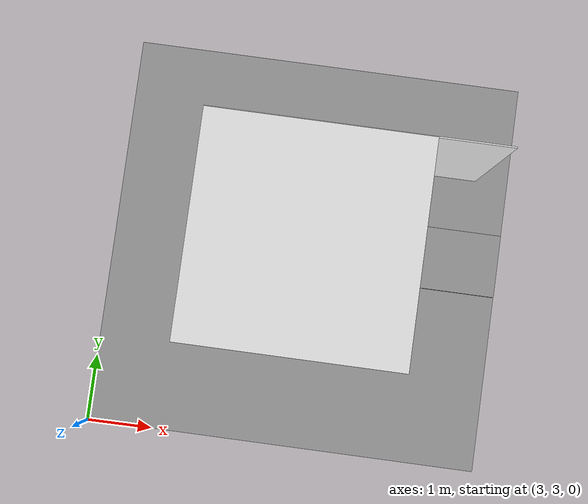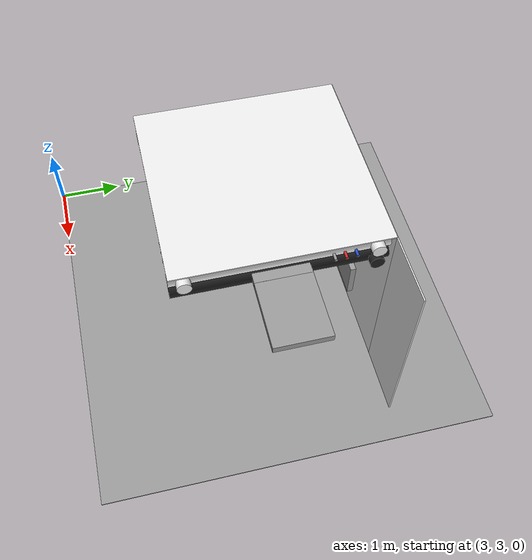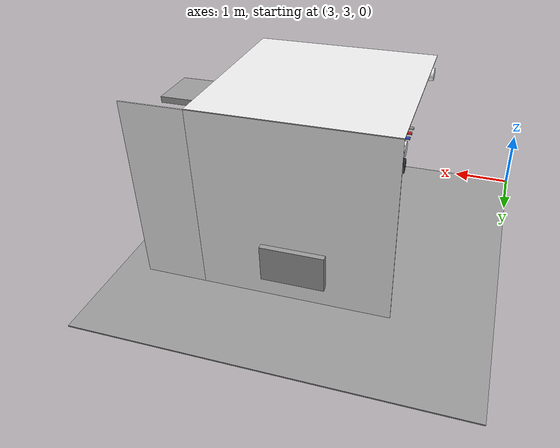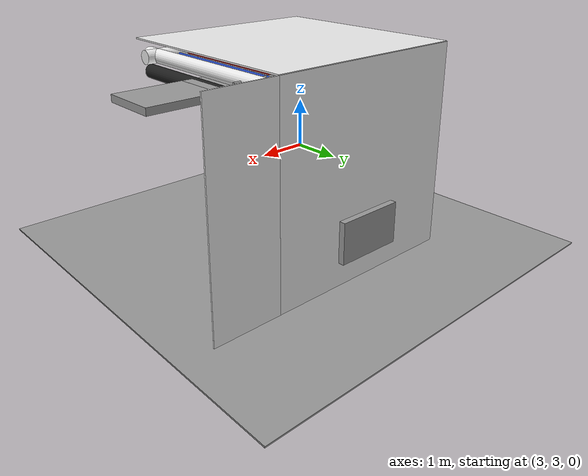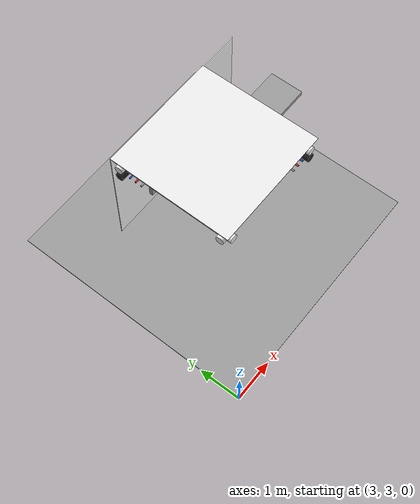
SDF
<sdf version="1.6">
 <world name="default">
  <model name="wall_front_2_2_0_2">
   <static>1</static>
   <pose>6.0 7.5 1.5 0.0 0.0 0.0</pose>
   <link name="link">
    <collision name="collision"><geometry><box><size>3.0 0.02 3.0</size></box></geometry></collision>
    <visual name="visual">
     <material>
      <script><name>Gazebo/White</name><uri>file://media/materials/scripts/gazebo.material</uri></script>
     </material>
     <geometry><box><size>3.0 0.02 3.0</size></box></geometry>
    </visual>
   </link>
  </model>
  <model name="wall_top_2_2_0_2">
   <static>1</static>
   <pose>6.0 6.0 3.0 1.57 0.0 0.0</pose>
   <link name="link">
    <collision name="collision"><geometry><box><size>3.0 0.02 3.0</size></box></geometry></collision>
    <visual name="visual">
     <material>
      <script><name>Gazebo/White</name><uri>file://media/materials/scripts/gazebo.material</uri></script>
     </material>
     <geometry><box><size>3.0 0.02 3.0</size></box></geometry>
    </visual>
   </link>
  </model>
  <model name="ceiling_1_2_2_1_2">
   <pose>7.0 6.0 2.55 0.0 0.0 1.57</pose>
   <link name="link_1">
    <visual name="visual">
     <geometry><box><size>0.8 1 0.1</size></box></geometry>
     <material>
      <script><uri>file://media/materials/scripts/gazebo.material</uri><name>Gazebo/Grey</name></script>
     </material>
    </visual>
    <collision name="collision"><geometry><box><size>0.8 1 0.1</size></box></geometry></collision>
   </link>
   <static>1</static>
  </model>
  <model name="white_pipe_left_2_2_0_2">
   <static>1</static>
   <pose>6.0 6.0 2.76 0.0 0.0 0.0</pose>
   <link name="link_0">
    <visual name="visual">
     <pose>-1.3 0 0 1.57 0 0</pose>
     <geometry><cylinder><radius>0.1</radius><length>3.0</length></cylinder></geometry>
     <material>
      <script><uri>file://media/materials/scripts/gazebo.material</uri><name>Gazebo/White</name></script>
     </material>
    </visual>
    <collision name="collision">
     <pose>-1.3 0 0 1.57 0 0</pose>
     <geometry><cylinder><radius>0.1</radius><length>3.0</length></cylinder></geometry>
    </collision>
   </link>
  </model>
  <model name="white_pipe_right_2_2_0_2">
   <static>1</static>
   <pose>6.0 6.0 2.76 0.0 0.0 0.0</pose>
   <link name="link_0">
    <visual name="visual">
     <pose>1.3 0 0 1.57 0 0</pose>
     <geometry><cylinder><radius>0.1</radius><length>3.0</length></cylinder></geometry>
     <material>
      <script><uri>file://media/materials/scripts/gazebo.material</uri><name>Gazebo/White</name></script>
     </material>
    </visual>
    <collision name="collision">
     <pose>1.3 0 0 1.57 0 0</pose>
     <geometry><cylinder><radius>0.1</radius><length>3.0</length></cylinder></geometry>
    </collision>
   </link>
  </model>
  <model name="black_pipe_right_2_2_0_2">
   <static>1</static>
   <pose>6.0 6.0 2.76 0.0 0.0 0.0</pose>
   <link name="link_0">
    <visual name="visual">
     <pose>1.3 0 -0.25 1.57 0 0</pose>
     <geometry><cylinder><radius>0.1</radius><length>3.0</length></cylinder></geometry>
     <material>
      <script><uri>file://media/materials/scripts/gazebo.material</uri><name>Gazebo/Black</name></script>
     </material>
    </visual>
    <collision name="collision">
     <pose>1.3 0 -0.25 1.57 0 0</pose>
     <geometry><cylinder><radius>0.1</radius><length>3.0</length></cylinder></geometry>
    </collision>
   </link>
  </model>
  <model name="grey_pipe_right_2_2_0_2">
   <static>1</static>
   <pose>6.0 6.0 2.76 0.0 0.0 0.0</pose>
   <link name="link_0">
    <visual name="visual">
     <pose>0.7 0 0 1.57 0 0</pose>
     <geometry><cylinder><radius>0.02</radius><length>3.0</length></cylinder></geometry>
     <material>
      <script><uri>file://media/materials/scripts/gazebo.material</uri><name>Gazebo/Grey</name></script>
     </material>
    </visual>
    <collision name="collision">
     <pose>0.7 0 0 1.57 0 0</pose>
     <geometry><cylinder><radius>0.02</radius><length>3.0</length></cylinder></geometry>
    </collision>
   </link>
  </model>
  <model name="red_pipe_right_2_2_0_2">
   <static>1</static>
   <pose>6.0 6.0 2.76 0.0 0.0 0.0</pose>
   <link name="link_0">
    <visual name="visual">
     <pose>0.85 0 0 1.57 0 0</pose>
     <geometry><cylinder><radius>0.02</radius><length>3.0</length></cylinder></geometry>
     <material>
      <script><uri>file://media/materials/scripts/gazebo.material</uri><name>Gazebo/Red</name></script>
     </material>
    </visual>
    <collision name="collision">
     <pose>0.85 0 0 1.57 0 0</pose>
     <geometry><cylinder><radius>0.02</radius><length>3.0</length></cylinder></geometry>
    </collision>
   </link>
  </model>
  <model name="blue_pipe_right_2_2_0_2">
   <static>1</static>
   <pose>6.0 6.0 2.76 0.0 0.0 0.0</pose>
   <link name="link_0">
    <visual name="visual">
     <pose>1 0 0 1.57 0 0</pose>
     <geometry><cylinder><radius>0.02</radius><length>3.0</length></cylinder></geometry>
     <material>
      <script><uri>file://media/materials/scripts/gazebo.material</uri><name>Gazebo/Blue</name></script>
     </material>
    </visual>
    <collision name="collision">
     <pose>1 0 0 1.57 0 0</pose>
     <geometry><cylinder><radius>0.02</radius><length>3.0</length></cylinder></geometry>
    </collision>
   </link>
  </model>
  <model name="white_pipe_left_1_2_2_0_2">
   <static>1</static>
   <pose>6.0 6.0 2.76 0.0 0.0 1.57</pose>
   <link name="link_0">
    <visual name="visual">
     <pose>-1.3 0 0 1.57 0 0</pose>
     <geometry><cylinder><radius>0.1</radius><length>3.0</length></cylinder></geometry>
     <material>
      <script><uri>file://media/materials/scripts/gazebo.material</uri><name>Gazebo/White</name></script>
     </material>
    </visual>
    <collision name="collision">
     <pose>-1.3 0 0 1.57 0 0</pose>
     <geometry><cylinder><radius>0.1</radius><length>3.0</length></cylinder></geometry>
    </collision>
   </link>
  </model>
  <model name="white_pipe_right_1_2_2_0_2">
   <static>1</static>
   <pose>6.0 6.0 2.76 0.0 0.0 1.57</pose>
   <link name="link_0">
    <visual name="visual">
     <pose>1.3 0 0 1.57 0 0</pose>
     <geometry><cylinder><radius>0.1</radius><length>3.0</length></cylinder></geometry>
     <material>
      <script><uri>file://media/materials/scripts/gazebo.material</uri><name>Gazebo/White</name></script>
     </material>
    </visual>
    <collision name="collision">
     <pose>1.3 0 0 1.57 0 0</pose>
     <geometry><cylinder><radius>0.1</radius><length>3.0</length></cylinder></geometry>
    </collision>
   </link>
  </model>
  <model name="black_pipe_right_1_2_2_0_2">
   <static>1</static>
   <pose>6.0 6.0 2.76 0.0 0.0 1.57</pose>
   <link name="link_0">
    <visual name="visual">
     <pose>1.3 0 -0.25 1.57 0 0</pose>
     <geometry><cylinder><radius>0.1</radius><length>3.0</length></cylinder></geometry>
     <material>
      <script><uri>file://media/materials/scripts/gazebo.material</uri><name>Gazebo/Black</name></script>
     </material>
    </visual>
    <collision name="collision">
     <pose>1.3 0 -0.25 1.57 0 0</pose>
     <geometry><cylinder><radius>0.1</radius><length>3.0</length></cylinder></geometry>
    </collision>
   </link>
  </model>
  <model name="grey_pipe_right_1_2_2_0_2">
   <static>1</static>
   <pose>6.0 6.0 2.76 0.0 0.0 1.57</pose>
   <link name="link_0">
    <visual name="visual">
     <pose>0.7 0 0 1.57 0 0</pose>
     <geometry><cylinder><radius>0.02</radius><length>3.0</length></cylinder></geometry>
     <material>
      <script><uri>file://media/materials/scripts/gazebo.material</uri><name>Gazebo/Grey</name></script>
     </material>
    </visual>
    <collision name="collision">
     <pose>0.7 0 0 1.57 0 0</pose>
     <geometry><cylinder><radius>0.02</radius><length>3.0</length></cylinder></geometry>
    </collision>
   </link>
  </model>
  <model name="red_pipe_right_1_2_2_0_2">
   <static>1</static>
   <pose>6.0 6.0 2.76 0.0 0.0 1.57</pose>
   <link name="link_0">
    <visual name="visual">
     <pose>0.85 0 0 1.57 0 0</pose>
     <geometry><cylinder><radius>0.02</radius><length>3.0</length></cylinder></geometry>
     <material>
      <script><uri>file://media/materials/scripts/gazebo.material</uri><name>Gazebo/Red</name></script>
     </material>
    </visual>
    <collision name="collision">
     <pose>0.85 0 0 1.57 0 0</pose>
     <geometry><cylinder><radius>0.02</radius><length>3.0</length></cylinder></geometry>
    </collision>
   </link>
  </model>
  <model name="blue_pipe_right_1_2_2_0_2">
   <static>1</static>
   <pose>6.0 6.0 2.76 0.0 0.0 1.57</pose>
   <link name="link_0">
    <visual name="visual">
     <pose>1 0 0 1.57 0 0</pose>
     <geometry><cylinder><radius>0.02</radius><length>3.0</length></cylinder></geometry>
     <material>
      <script><uri>file://media/materials/scripts/gazebo.material</uri><name>Gazebo/Blue</name></script>
     </material>
    </visual>
    <collision name="collision">
     <pose>1 0 0 1.57 0 0</pose>
     <geometry><cylinder><radius>0.02</radius><length>3.0</length></cylinder></geometry>
    </collision>
   </link>
  </model>
  <model name="wall_bottom_2_2_0_2">
   <static>1</static>
   <pose>6.0 6.0 0.0 0.0 0.0 0.0</pose>
   <link name="link">
    <collision name="collision"><geometry><box><size>6.0 6.0 0.02</size></box></geometry></collision>
    <visual name="visual">
     <material>
      <script><name>Gazebo/Grey</name><uri>file://media/materials/scripts/gazebo.material</uri></script>
     </material>
     <geometry><box><size>6.0 6.0 0.02</size></box></geometry>
    </visual>
   </link>
  </model>
  <model name="panel_2_2_0_2">
   <static>1</static>
   <pose>6.0 7.5 0.66 0.0 0.0 1.57</pose>
   <link name="link">
    <collision name="collision"><geometry><box><size>0.2 1 0.6</size></box></geometry></collision>
    <visual name="visual">
     <material>
      <script><name>Gazebo/Grey</name><uri>file://media/materials/scripts/gazebo.material</uri></script>
     </material>
     <geometry><box><size>0.2 1 0.6</size></box></geometry>
    </visual>
   </link>
  </model>
  <model name="ceiling_1_3_2_0_2">
   <pose>8.0 6.0 2.55 0.0 0.0 -1.57</pose>
   <link name="link_1">
    <visual name="visual">
     <geometry><box><size>0.8 1 0.1</size></box></geometry>
     <material>
      <script><uri>file://media/materials/scripts/gazebo.material</uri><name>Gazebo/Grey</name></script>
     </material>
    </visual>
    <collision name="collision"><geometry><box><size>0.8 1 0.1</size></box></geometry></collision>
   </link>
   <static>1</static>
  </model>
  <model name="wall_left_front_right_3_2_0_2">
   <static>1</static>
   <pose>8.0 7.5 1.5 0.0 0.0 0.0</pose>
   <link name="link">
    <collision name="collision"><geometry><box><size>1.0 0.02 3.0</size></box></geometry></collision>
    <visual name="visual">
     <material>
      <script><name>Gazebo/White</name><uri>file://media/materials/scripts/gazebo.material</uri></script>
     </material>
     <geometry><box><size>1.0 0.02 3.0</size></box></geometry>
    </visual>
   </link>
  </model>
 </world>
</sdf>
